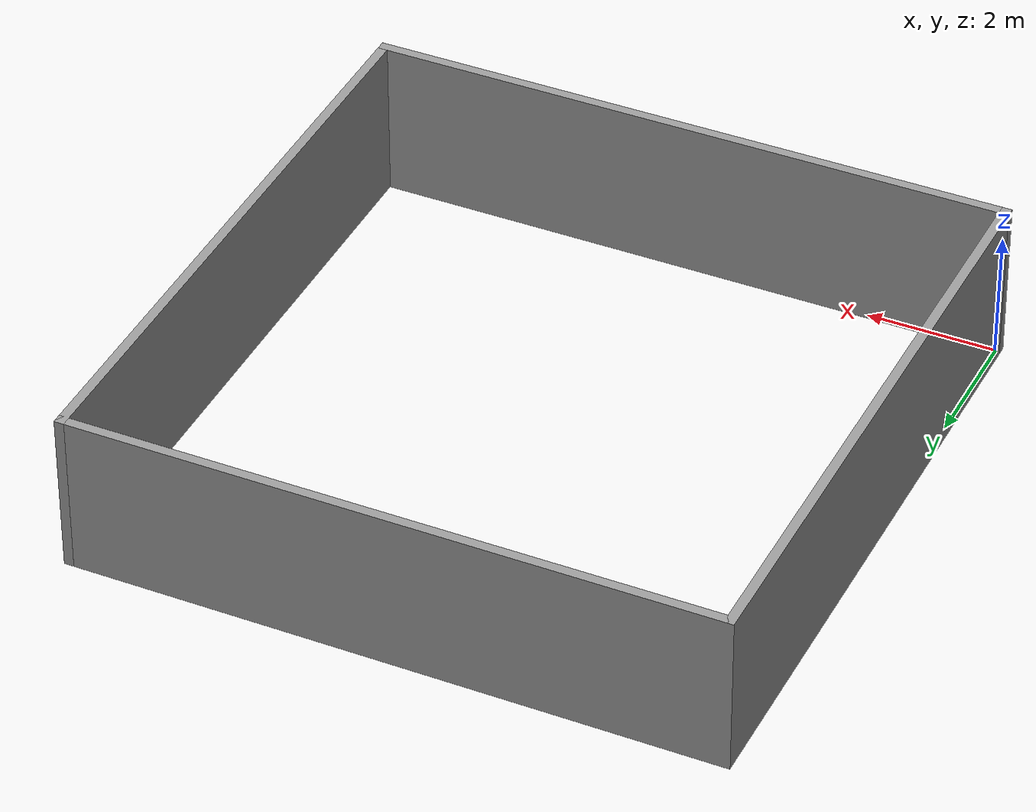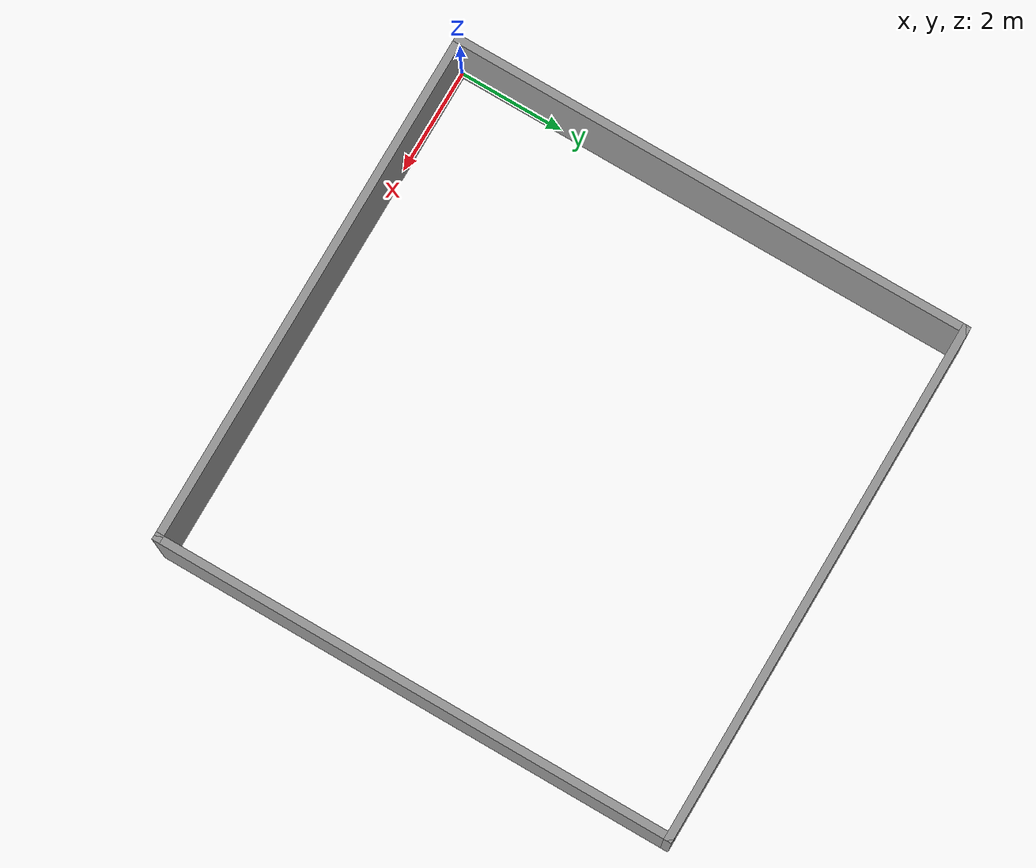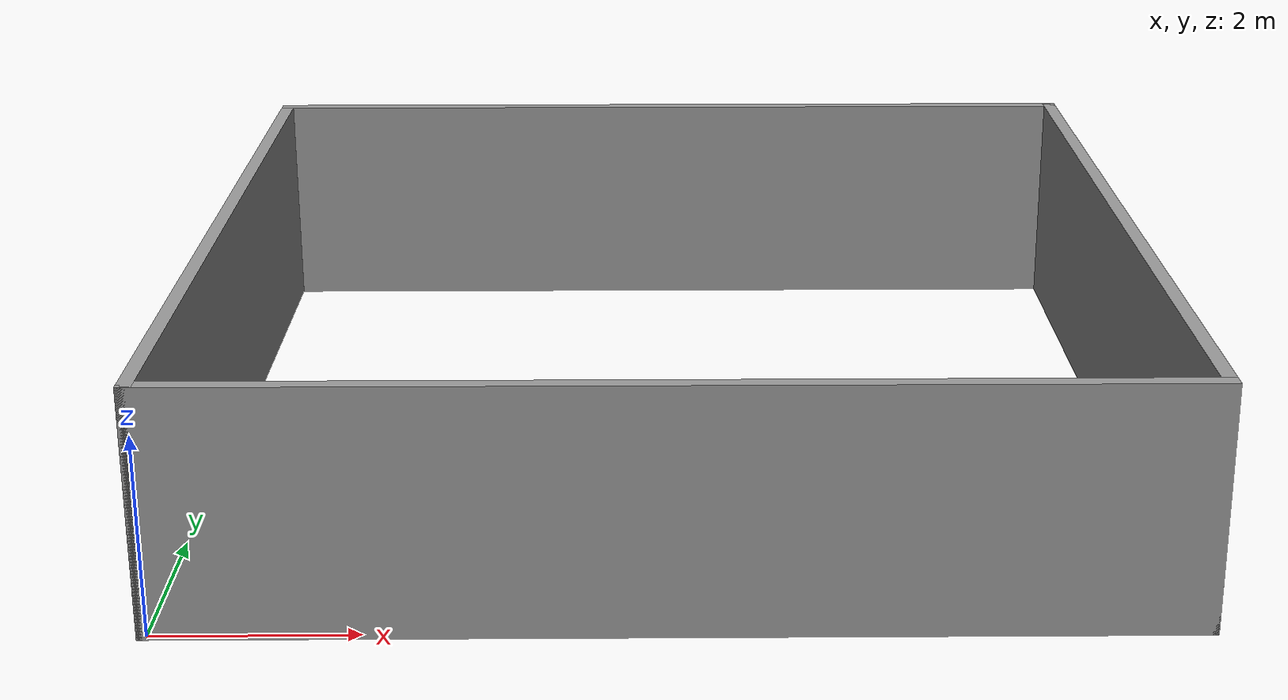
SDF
<?xml version='1.0'?>
<sdf version='1.6'>
  <model name='Square_10x10'>
    <pose frame=''>4.91877 4.91643 0 0 -0 0</pose>
    <link name='Wall_13'>
      <collision name='Wall_13_Collision'>
        <geometry>
          <box>
            <size>10 0.15 2.5</size>
          </box>
        </geometry>
        <pose frame=''>0 0 1.25 0 -0 0</pose>
      </collision>
      <visual name='Wall_13_Visual'>
        <pose frame=''>0 0 1.25 0 -0 0</pose>
        <geometry>
          <box>
            <size>10 0.15 2.5</size>
          </box>
        </geometry>
        <material>
          <script>
            <uri>file://media/materials/scripts/gazebo.material</uri>
            <name>Gazebo/Grey</name>
          </script>
          <ambient>1 1 1 1</ambient>
        </material>
      </visual>
      <pose frame=''>0 -4.925 0 0 -0 0</pose>
    </link>
    <link name='Wall_14'>
      <collision name='Wall_14_Collision'>
        <geometry>
          <box>
            <size>10 0.15 2.5</size>
          </box>
        </geometry>
        <pose frame=''>0 0 1.25 0 -0 0</pose>
      </collision>
      <visual name='Wall_14_Visual'>
        <pose frame=''>0 0 1.25 0 -0 0</pose>
        <geometry>
          <box>
            <size>10 0.15 2.5</size>
          </box>
        </geometry>
        <material>
          <script>
            <uri>file://media/materials/scripts/gazebo.material</uri>
            <name>Gazebo/Grey</name>
          </script>
          <ambient>1 1 1 1</ambient>
        </material>
      </visual>
      <pose frame=''>4.925 0 0 0 -0 1.5708</pose>
    </link>
    <link name='Wall_15'>
      <collision name='Wall_15_Collision'>
        <geometry>
          <box>
            <size>10 0.15 2.5</size>
          </box>
        </geometry>
        <pose frame=''>0 0 1.25 0 -0 0</pose>
      </collision>
      <visual name='Wall_15_Visual'>
        <pose frame=''>0 0 1.25 0 -0 0</pose>
        <geometry>
          <box>
            <size>10 0.15 2.5</size>
          </box>
        </geometry>
        <material>
          <script>
            <uri>file://media/materials/scripts/gazebo.material</uri>
            <name>Gazebo/Grey</name>
          </script>
          <ambient>1 1 1 1</ambient>
        </material>
      </visual>
      <pose frame=''>0 4.925 0 0 -0 3.14159</pose>
    </link>
    <link name='Wall_9'>
      <collision name='Wall_9_Collision'>
        <geometry>
          <box>
            <size>10 0.15 2.5</size>
          </box>
        </geometry>
        <pose frame=''>0 0 1.25 0 -0 0</pose>
      </collision>
      <visual name='Wall_9_Visual'>
        <pose frame=''>0 0 1.25 0 -0 0</pose>
        <geometry>
          <box>
            <size>10 0.15 2.5</size>
          </box>
        </geometry>
        <material>
          <script>
            <uri>file://media/materials/scripts/gazebo.material</uri>
            <name>Gazebo/Grey</name>
          </script>
          <ambient>1 1 1 1</ambient>
        </material>
      </visual>
      <pose frame=''>-4.925 0 0 0 -0 1.5708</pose>
    </link>
    <static>1</static>
  </model>
</sdf>
